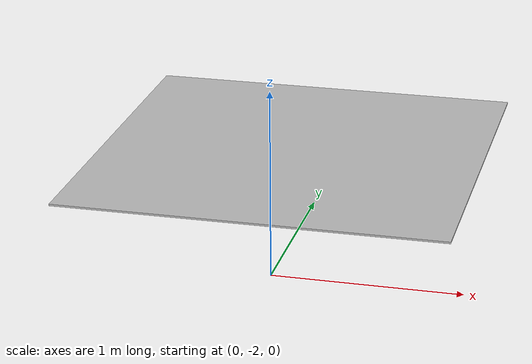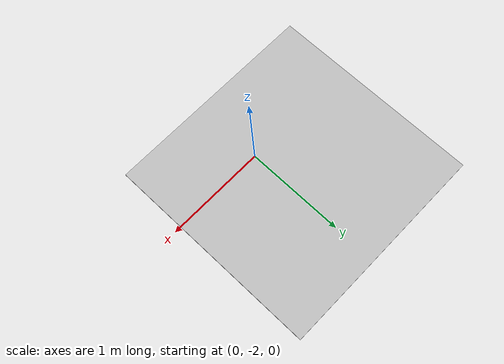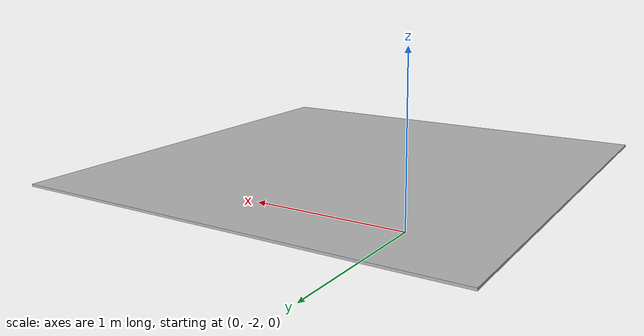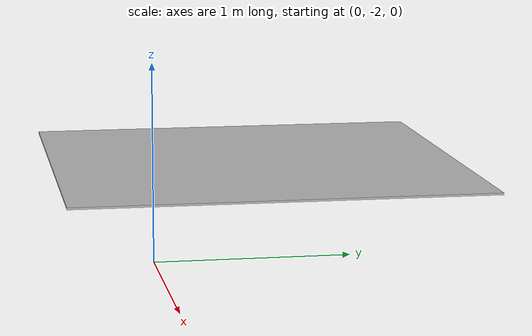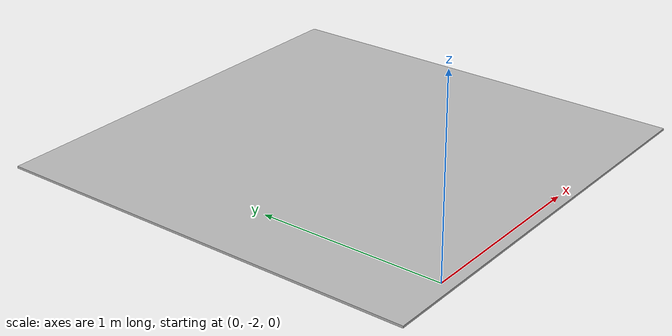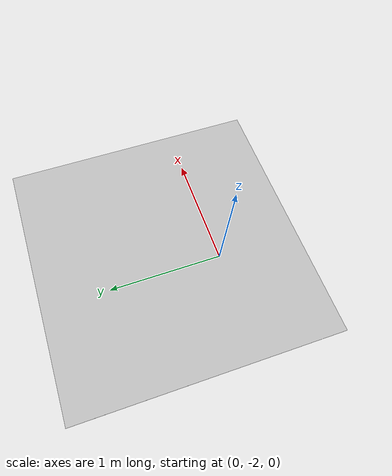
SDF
<?xml version="1.0" ?>
<sdf version="1.6">
  <model name="start">
   <static>true</static>
    <pose>0 0 0.5 0 0 0</pose>
    <link name="box">
      <pose>0 -1.5 0 0 0 0</pose>
      <collision name="collision">
        <geometry>
          <box>
            <size>2 2 0.01</size>
          </box>
        </geometry>
      </collision>
      <visual name="visual">
        <geometry>
          <box>
            <size>2 2 0.01</size>
          </box>
        </geometry>
        <material>
          <script>
            <uri>model://start/materials/scripts</uri>
            <uri>model://start/materials/textures</uri>
            <name>TexturedShape/Start</name>
          </script>
        </material>
      </visual>
    </link>
  </model>
</sdf>
